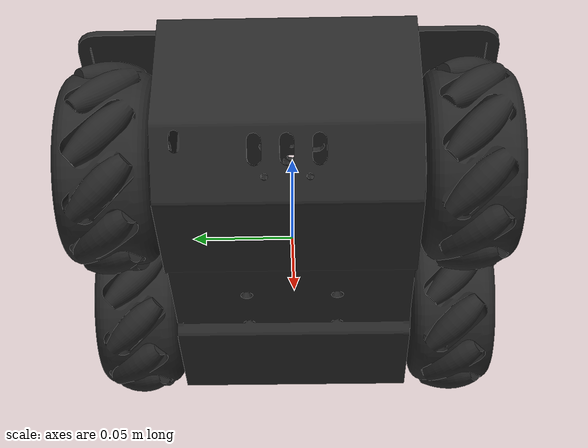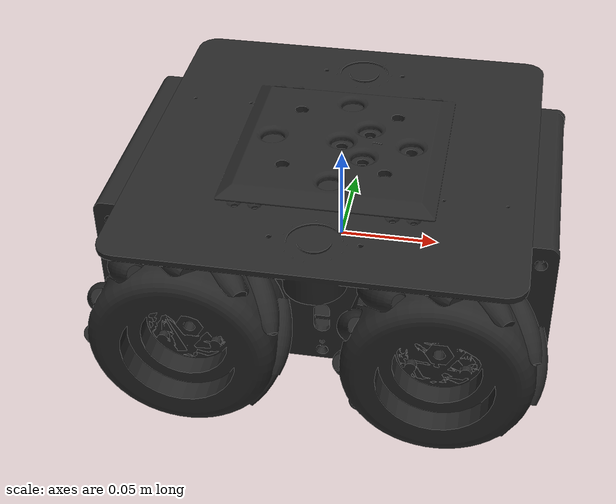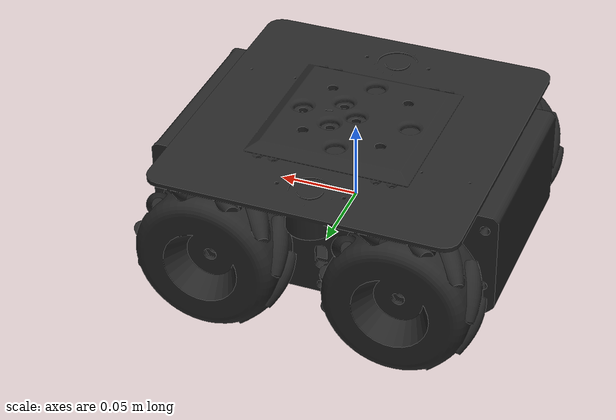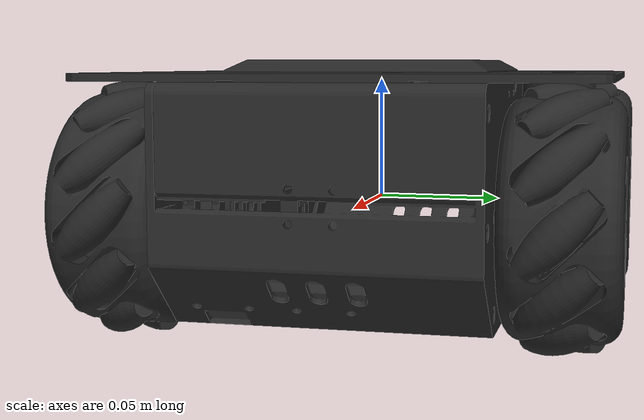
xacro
<?xml version="1.0"?>
<robot name="smartcar"
  xmlns:xacro="http://ros.org/wiki/xacro">
  <xacro:property name="PI" value="3.1415926535897931" />

  <xacro:property name="wheel_radius" value="0.043" />
  <xacro:property name="wheel_width" value="0.04" />

  <xacro:property name="wheel_offset_x" value="0.06" />
  <xacro:property name="wheel_offset_y" value="0.083" />

  <xacro:property name="board_length" value="0.194" />
  <xacro:property name="board_width" value="0.2" />
  <xacro:property name="board_height" value="0.003" />

  <material name="dark_grey">
    <color rgba="0.2 0.2 0.2 1.0" />
  </material>
  <material name="light_grey">
    <color rgba="0.4 0.4 0.4 1.0" />
  </material>
  <material name="red">
    <color rgba="0.8 0.0 0.0 1.0" />
  </material>
  <material name="white">
    <color rgba="0.9 0.9 0.9 1.0" />
  </material>
  <material name="yellow">
    <color rgba="0.8 0.8 0.0 1.0" />
  </material>
  <material name="black">
    <color rgba="0.15 0.15 0.15 1.0" />
  </material>

  <xacro:macro name="wheel" params="parent_link prefix side *joint_pose">
    <link name="${prefix}_${side}_wheel_link">
      <visual>
        <origin xyz="0 0.006 0" rpy="0 0 ${PI/2}"/>
        <geometry>
          <mesh filename="package://smartcar/meshes/wheel.STL"/>
        </geometry>
        <material name="black" />
      </visual>
      <collision>
        <origin xyz="0 0 0" rpy="${PI/2} 0 0"/>
        <geometry>
          <cylinder radius="${wheel_radius}" length="${wheel_width}"/>
        </geometry>
      </collision>
      <inertial>
        <origin xyz="0 0 0" rpy="0 0 0"/>
        <mass value="2.3"/>
        <inertia ixx="3.3212e-3" ixy="0" ixz="0" iyy="6.6424e-3" iyz="0" izz="3.3212e-3"/>
      </inertial>
    </link>

    <joint name="${prefix}_${side}_wheel" type="continuous">
      <parent link="${parent_link}"/>
      <child link="${prefix}_${side}_wheel_link" />
      <xacro:insert_block name="joint_pose" />
      <axis xyz="0 1 0" />
    </joint>

    <transmission name="${prefix}_wheel_trans">
      <type>transmission_interface/SimpleTransmission</type>
      <joint name="${prefix}_${side}_wheel">
        <hardwareInterface>hardware_interface/VelocityJointInterface</hardwareInterface>
      </joint>
      <actuator name="${prefix}_${side}_actuator">
        <mechanicalReduction>1</mechanicalReduction>
      </actuator>
    </transmission>
  </xacro:macro>

  <link name="base_link"></link>

  <joint name="base_link_joint" type="fixed">
    <origin xyz="0 0 0" rpy="0 0 0" />
    <parent link="base_link"/>
    <child link="chassis_link" />
  </joint>

  <link name="chassis_link">
    <visual>
      <origin xyz="0 0 0" rpy="0 0 0" />
      <geometry>
        <mesh filename="package://smartcar/meshes/body_link.STL"/>
      </geometry>
      <material name="black" />
    </visual>
    <collision>
      <origin xyz="0 0 0"/>
      <geometry>
        <mesh filename="package://smartcar/meshes/body_link.STL"/>
      </geometry>
    </collision>
    <inertial>
      <origin xyz="0 0 -0.025" rpy="0 0 0"/>
      <mass value="1"/>
      <inertia ixx="0.025" ixy="0.0" ixz="0.0" iyy="0.025" iyz="0.0" izz="0.0375"/>
    </inertial>
  </link>

  <xacro:wheel parent_link="base_link" prefix="front" side="left">
    <origin xyz="${wheel_offset_x} ${wheel_offset_y} 0" rpy="0 0 0" />
  </xacro:wheel>

  <xacro:wheel parent_link="base_link" prefix="rear" side="left">
    <origin xyz="-${wheel_offset_x} ${wheel_offset_y} 0" rpy="0 0 0" />
  </xacro:wheel>

  <xacro:wheel parent_link="base_link" prefix="front" side="right">
    <origin xyz="${wheel_offset_x} -${wheel_offset_y} 0" rpy="0 0 0" />
  </xacro:wheel>

  <xacro:wheel parent_link="base_link" prefix="rear" side="right">
    <origin xyz="-${wheel_offset_x} -${wheel_offset_y} 0" rpy="0 0 0" />
  </xacro:wheel>

  <joint name="board_loading_joint" type="prismatic">
    <origin xyz="0 0 0" rpy="0 0 0" />
    <parent link="chassis_link"/>
    <child link="board_link" />
    <axis xyz="0 0 1"/>
    <limit effort="10000" lower="0.0" upper="0.045" velocity="0.05"/>
  </joint>

  <transmission name="board_loading_trans">
    <type>transmission_interface/SimpleTransmission</type>
    <joint name="board_loading_joint">
      <hardwareInterface>hardware_interface/PositionJointInterface</hardwareInterface>
    </joint>
    <actuator name="board_loading_actuator">
      <hardwareInterface>hardware_interface/PositionJointInterface</hardwareInterface>
      <mechanicalReduction>1</mechanicalReduction>
    </actuator>
  </transmission>

  <link name="board_link">
    <visual>
      <origin xyz="0 0 0.053" rpy="0 0 0" />
      <geometry>
        <mesh filename="package://smartcar/meshes/board.STL" />
      </geometry>
      <material name="black" />
    </visual>
    <collision>
      <origin xyz="0 0 0.053" rpy="0 0 0" />
      <geometry>
        <box size="${board_length} ${board_width} ${board_height}"/>
      </geometry>
    </collision>
    <inertial>
      <origin xyz="0 0 0.053" rpy="0 0 0"/>
      <mass value="0.1"/>
      <inertia ixx="0.001" ixy="0.0" ixz="0.0" iyy="0.001" iyz="0.0" izz="0.002"/>
    </inertial>
  </link>
</robot>
